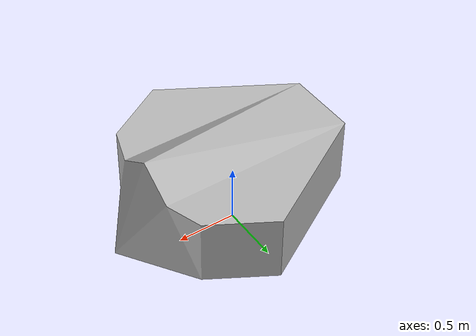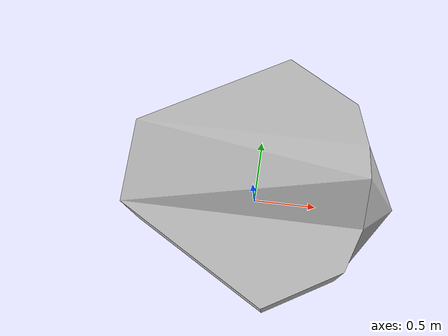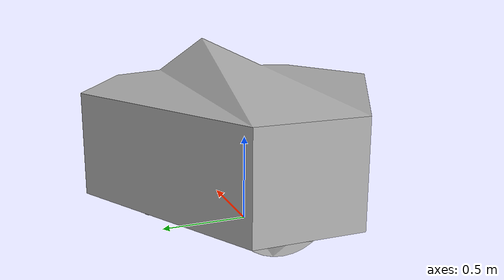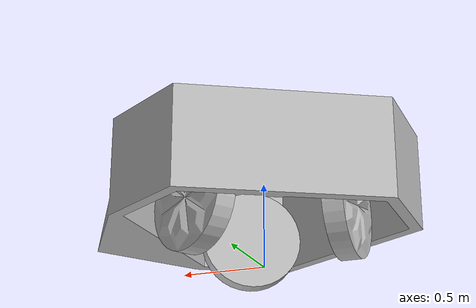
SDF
<?xml version="1.0" ?>
<sdf version="1.5">
  <model name="dienen">
    <plugin name='movement' filename='libmovement_plugin.so'>
    </plugin>
    <link name="base">
      <pose>0 0 0.5 0 0 0</pose>
      <inertial>
        <pose>0 0 0 0 0 0</pose>
        <inertia>
          <ixx>0.058640</ixx>
          <ixy>0.000124</ixy>
          <ixz>0.000615</ixz>
          <iyy>0.058786</iyy>
          <iyz>0.000014</iyz>
          <izz>1.532440</izz>
        </inertia>
        <mass>2.234000</mass>
      </inertial>
      <collision name="collision">
        <pose>0 0 0 0 0 0</pose>
        <geometry>
          <mesh>
            <uri>model://dienen/meshes/base.dae</uri>
          </mesh>
        </geometry>
      </collision>
      <visual name="visual">
        <pose>0 0 0 0 0 0</pose>
        <geometry>
          <mesh>
            <uri>model://dienen/meshes/base.dae</uri>
          </mesh>
        </geometry>
      </visual>
    </link>
    <link name="wheel_0">
      <pose>0.25 0.433013 0.3 1.5708 0 2.61799</pose>
      <inertial>
        <inertia>
          <ixx>0.001000</ixx>
          <ixy>0</ixy>
          <ixz>0</ixz>
          <iyy>0.001000</iyy>
          <iyz>0</iyz>
          <izz>0.001000</izz>
        </inertia>
        <mass>0.010000</mass>
      </inertial>
      <visual name="visual">
        <pose>0 0 0 0 0 0</pose>
        <geometry>
          <mesh>
            <uri>model://dienen/meshes/wheel.dae</uri>
          </mesh>
        </geometry>
      </visual>
      <collision name="collision">
        <pose>0 0 0 0 0 0</pose>
        <geometry>
          <cylinder>
            <radius>0.31</radius>
            <length>0.13</length>
          </cylinder>
        </geometry>
        <surface>
          <friction>
            <ode>
              <mu>10</mu>
              <mu2>10</mu2>
              <fdir1>0 0 0</fdir1>
              <slip1>0</slip1>
              <slip2>0</slip2>
            </ode>
          </friction>
        </surface>
      </collision>
    </link>
    <link name="wheel_1">
      <pose>-0.5 0 0.3 1.5708 0 -1.5708</pose>
      <inertial>
        <inertia>
          <ixx>0.001000</ixx>
          <ixy>0</ixy>
          <ixz>0</ixz>
          <iyy>0.001000</iyy>
          <iyz>0</iyz>
          <izz>0.001000</izz>
        </inertia>
        <mass>0.010000</mass>
      </inertial>
      <visual name="visual">
        <pose>0 0 0 0 0 0</pose>
        <geometry>
          <mesh>
            <uri>model://dienen/meshes/wheel.dae</uri>
          </mesh>
        </geometry>
      </visual>
      <collision name="collision">
        <pose>0 0 0 0 0 0</pose>
        <geometry>
          <cylinder>
            <radius>0.31</radius>
            <length>0.13</length>
          </cylinder>
        </geometry>
        <surface>
          <friction>
            <ode>
              <mu>10</mu>
              <mu2>10</mu2>
              <fdir1>0 0 0</fdir1>
              <slip1>0</slip1>
              <slip2>0</slip2>
            </ode>
          </friction>
        </surface>
      </collision>
    </link>
    <link name="wheel_2">
      <pose>0.25 -0.433013 0.3 1.5708 0 0.523599</pose>
      <inertial>
        <inertia>
          <ixx>0.001000</ixx>
          <ixy>0</ixy>
          <ixz>0</ixz>
          <iyy>0.001000</iyy>
          <iyz>0</iyz>
          <izz>0.001000</izz>
        </inertia>
        <mass>0.010000</mass>
      </inertial>
      <visual name="visual">
        <pose>0 0 0 0 0 0</pose>
        <geometry>
          <mesh>
            <uri>model://dienen/meshes/wheel.dae</uri>
          </mesh>
        </geometry>
      </visual>
      <collision name="collision">
        <pose>0 0 0 0 0 0</pose>
        <geometry>
          <cylinder>
            <radius>0.31</radius>
            <length>0.13</length>
          </cylinder>
        </geometry>
        <surface>
          <friction>
            <ode>
              <mu>10</mu>
              <mu2>10</mu2>
              <fdir1>0 0 0</fdir1>
              <slip1>0</slip1>
              <slip2>0</slip2>
            </ode>
          </friction>
        </surface>
      </collision>
    </link>
    <joint name="wheel_0_joint" type="revolute">
      <parent>base</parent>
      <child>wheel_0</child>
      <axis>
        <xyz>0.5 0.866026 0</xyz>
        <use_parent_model_frame>true</use_parent_model_frame>
      </axis>
    </joint>
    <joint name="wheel_1_joint" type="revolute">
      <parent>base</parent>
      <child>wheel_1</child>
      <axis>
        <xyz>-1 0 0</xyz>
        <use_parent_model_frame>true</use_parent_model_frame>
      </axis>
    </joint>
    <joint name="wheel_2_joint" type="revolute">
      <parent>base</parent>
      <child>wheel_2</child>
      <axis>
        <xyz>0.5 -0.866026 0</xyz>
        <use_parent_model_frame>true</use_parent_model_frame>
      </axis>
    </joint>
  </model>
</sdf>
